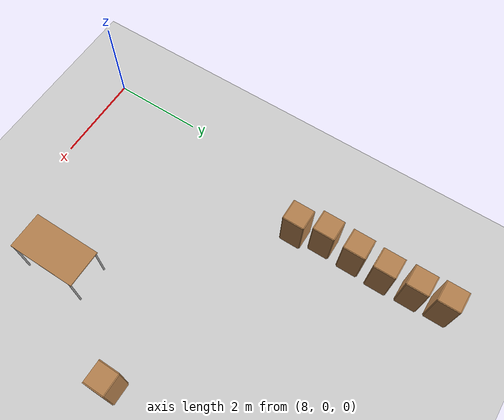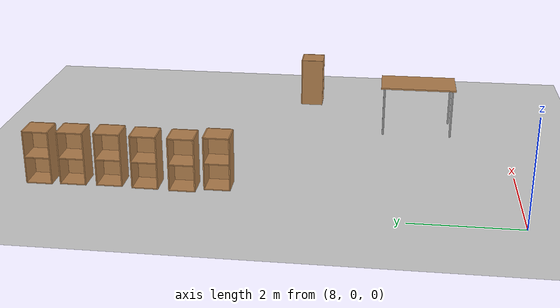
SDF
<sdf version="1.6">
 <world name="default">
  <model name="ground_plane">
   <static>1</static>
   <link name="link">
    <collision name="collision">
     <geometry><plane><normal>0 0 1</normal><size>100 100</size></plane></geometry>
     <surface>
      <contact><collide_bitmask>65535</collide_bitmask></contact>
      <friction><ode><mu>100</mu><mu2>50</mu2></ode></friction>
     </surface>
    </collision>
    <visual name="visual">
     <cast_shadows>0</cast_shadows>
     <geometry><plane><normal>0 0 1</normal><size>100 100</size></plane></geometry>
     <material>
      <script><uri>file://media/materials/scripts/gazebo.material</uri><name>Gazebo/Grey</name></script>
     </material>
    </visual>
   </link>
  </model>
  <model name="table_clone_0">
   <static>1</static>
   <link name="link">
    <collision name="surface">
     <pose>0 0 1 0 -0 0</pose>
     <geometry><box><size>1.5 0.8 0.03</size></box></geometry>
     <surface><friction><ode><mu>0.6</mu><mu2>0.6</mu2></ode></friction></surface>
    </collision>
    <visual name="visual1">
     <pose>0 0 1 0 -0 0</pose>
     <geometry><box><size>1.5 0.8 0.03</size></box></geometry>
     <material>
      <script><uri>file://media/materials/scripts/gazebo.material</uri><name>Gazebo/Wood</name></script>
     </material>
    </visual>
    <collision name="front_left_leg">
     <pose>0.68 0.38 0.5 0 -0 0</pose>
     <geometry><cylinder><radius>0.02</radius><length>1</length></cylinder></geometry>
    </collision>
    <visual name="front_left_leg">
     <pose>0.68 0.38 0.5 0 -0 0</pose>
     <geometry><cylinder><radius>0.02</radius><length>1</length></cylinder></geometry>
     <material>
      <script><uri>file://media/materials/scripts/gazebo.material</uri><name>Gazebo/Grey</name></script>
     </material>
    </visual>
    <collision name="front_right_leg">
     <pose>0.68 -0.38 0.5 0 -0 0</pose>
     <geometry><cylinder><radius>0.02</radius><length>1</length></cylinder></geometry>
    </collision>
    <visual name="front_right_leg">
     <pose>0.68 -0.38 0.5 0 -0 0</pose>
     <geometry><cylinder><radius>0.02</radius><length>1</length></cylinder></geometry>
     <material>
      <script><uri>file://media/materials/scripts/gazebo.material</uri><name>Gazebo/Grey</name></script>
     </material>
    </visual>
    <collision name="back_right_leg">
     <pose>-0.68 -0.38 0.5 0 -0 0</pose>
     <geometry><cylinder><radius>0.02</radius><length>1</length></cylinder></geometry>
    </collision>
    <visual name="back_right_leg">
     <pose>-0.68 -0.38 0.5 0 -0 0</pose>
     <geometry><cylinder><radius>0.02</radius><length>1</length></cylinder></geometry>
     <material>
      <script><uri>file://media/materials/scripts/gazebo.material</uri><name>Gazebo/Grey</name></script>
     </material>
    </visual>
    <collision name="back_left_leg">
     <pose>-0.68 0.38 0.5 0 -0 0</pose>
     <geometry><cylinder><radius>0.02</radius><length>1</length></cylinder></geometry>
    </collision>
    <visual name="back_left_leg">
     <pose>-0.68 0.38 0.5 0 -0 0</pose>
     <geometry><cylinder><radius>0.02</radius><length>1</length></cylinder></geometry>
     <material>
      <script><uri>file://media/materials/scripts/gazebo.material</uri><name>Gazebo/Grey</name></script>
     </material>
    </visual>
   </link>
   <pose>12.2611 1.7659 0 0 -0 1.5707</pose>
  </model>
  <model name="cabinet_clone_0">
   <static>1</static>
   <link name="cabinet_bottom_plate">
    <inertial>
     <pose>0 0 -1 0 -0 0</pose>
     <inertia><ixx>2.05</ixx><ixy>0</ixy><ixz>0</ixz><iyy>2.05</iyy><iyz>0</iyz><izz>2.05</izz></inertia>
     <mass>25</mass>
    </inertial>
    <collision name="cabinet_bottom_plate_geom">
     <pose>0 0 0.01 0 -0 0</pose>
     <geometry><box><size>0.45 0.45 0.02</size></box></geometry>
    </collision>
    <visual name="cabinet_bottom_plate_geom_visual">
     <pose>0 0 0.01 0 -0 0</pose>
     <geometry><box><size>0.45 0.45 0.02</size></box></geometry>
     <material>
      <script><uri>file://media/materials/scripts/gazebo.material</uri><name>Gazebo/Wood</name></script>
     </material>
    </visual>
    <collision name="cabinet_bottom_plate_geom_cabinet_back_plate">
     <pose>0.235 0 0.51 0 -0 0</pose>
     <geometry><box><size>0.02 0.45 1.02</size></box></geometry>
    </collision>
    <visual name="cabinet_bottom_plate_geom_cabinet_back_plate_visual">
     <pose>0.235 0 0.51 0 -0 0</pose>
     <geometry><box><size>0.02 0.45 1.02</size></box></geometry>
     <material>
      <script><uri>file://media/materials/scripts/gazebo.material</uri><name>Gazebo/Wood</name></script>
     </material>
    </visual>
    <collision name="cabinet_bottom_plate_geom_cabinet_left_plate">
     <pose>0 0.235 0.51 0 -0 0</pose>
     <geometry><box><size>0.45 0.02 1.02</size></box></geometry>
    </collision>
    <visual name="cabinet_bottom_plate_geom_cabinet_left_plate_visual">
     <pose>0 0.235 0.51 0 -0 0</pose>
     <geometry><box><size>0.45 0.02 1.02</size></box></geometry>
     <material>
      <script><uri>file://media/materials/scripts/gazebo.material</uri><name>Gazebo/Wood</name></script>
     </material>
    </visual>
    <collision name="cabinet_bottom_plate_geom_cabinet_middle_plate">
     <pose>0 0 0.51 0 -0 0</pose>
     <geometry><box><size>0.45 0.45 0.02</size></box></geometry>
    </collision>
    <visual name="cabinet_bottom_plate_geom_cabinet_middle_plate_visual">
     <pose>0 0 0.51 0 -0 0</pose>
     <geometry><box><size>0.45 0.45 0.02</size></box></geometry>
     <material>
      <script><uri>file://media/materials/scripts/gazebo.material</uri><name>Gazebo/Wood</name></script>
     </material>
    </visual>
    <collision name="cabinet_bottom_plate_geom_cabinet_right_plate">
     <pose>0 -0.235 0.51 0 -0 0</pose>
     <geometry><box><size>0.45 0.02 1.02</size></box></geometry>
    </collision>
    <visual name="cabinet_bottom_plate_geom_cabinet_right_plate_visual">
     <pose>0 -0.235 0.51 0 -0 0</pose>
     <geometry><box><size>0.45 0.02 1.02</size></box></geometry>
     <material>
      <script><uri>file://media/materials/scripts/gazebo.material</uri><name>Gazebo/Wood</name></script>
     </material>
    </visual>
    <collision name="cabinet_bottom_plate_geom_cabinet_top_plate">
     <pose>0 0 1.01 0 -0 0</pose>
     <geometry><box><size>0.45 0.45 0.02</size></box></geometry>
    </collision>
    <visual name="cabinet_bottom_plate_geom_cabinet_top_plate_visual">
     <pose>0 0 1.01 0 -0 0</pose>
     <geometry><box><size>0.45 0.45 0.02</size></box></geometry>
     <material>
      <script><uri>file://media/materials/scripts/gazebo.material</uri><name>Gazebo/Wood</name></script>
     </material>
    </visual>
   </link>
   <pose>8.94767 8.64428 0 0 -0 0</pose>
  </model>
  <model name="cabinet_clone_1">
   <static>1</static>
   <link name="cabinet_bottom_plate">
    <inertial>
     <pose>0 0 -1 0 -0 0</pose>
     <inertia><ixx>2.05</ixx><ixy>0</ixy><ixz>0</ixz><iyy>2.05</iyy><iyz>0</iyz><izz>2.05</izz></inertia>
     <mass>25</mass>
    </inertial>
    <collision name="cabinet_bottom_plate_geom">
     <pose>0 0 0.01 0 -0 0</pose>
     <geometry><box><size>0.45 0.45 0.02</size></box></geometry>
    </collision>
    <visual name="cabinet_bottom_plate_geom_visual">
     <pose>0 0 0.01 0 -0 0</pose>
     <geometry><box><size>0.45 0.45 0.02</size></box></geometry>
     <material>
      <script><uri>file://media/materials/scripts/gazebo.material</uri><name>Gazebo/Wood</name></script>
     </material>
    </visual>
    <collision name="cabinet_bottom_plate_geom_cabinet_back_plate">
     <pose>0.235 0 0.51 0 -0 0</pose>
     <geometry><box><size>0.02 0.45 1.02</size></box></geometry>
    </collision>
    <visual name="cabinet_bottom_plate_geom_cabinet_back_plate_visual">
     <pose>0.235 0 0.51 0 -0 0</pose>
     <geometry><box><size>0.02 0.45 1.02</size></box></geometry>
     <material>
      <script><uri>file://media/materials/scripts/gazebo.material</uri><name>Gazebo/Wood</name></script>
     </material>
    </visual>
    <collision name="cabinet_bottom_plate_geom_cabinet_left_plate">
     <pose>0 0.235 0.51 0 -0 0</pose>
     <geometry><box><size>0.45 0.02 1.02</size></box></geometry>
    </collision>
    <visual name="cabinet_bottom_plate_geom_cabinet_left_plate_visual">
     <pose>0 0.235 0.51 0 -0 0</pose>
     <geometry><box><size>0.45 0.02 1.02</size></box></geometry>
     <material>
      <script><uri>file://media/materials/scripts/gazebo.material</uri><name>Gazebo/Wood</name></script>
     </material>
    </visual>
    <collision name="cabinet_bottom_plate_geom_cabinet_middle_plate">
     <pose>0 0 0.51 0 -0 0</pose>
     <geometry><box><size>0.45 0.45 0.02</size></box></geometry>
    </collision>
    <visual name="cabinet_bottom_plate_geom_cabinet_middle_plate_visual">
     <pose>0 0 0.51 0 -0 0</pose>
     <geometry><box><size>0.45 0.45 0.02</size></box></geometry>
     <material>
      <script><uri>file://media/materials/scripts/gazebo.material</uri><name>Gazebo/Wood</name></script>
     </material>
    </visual>
    <collision name="cabinet_bottom_plate_geom_cabinet_right_plate">
     <pose>0 -0.235 0.51 0 -0 0</pose>
     <geometry><box><size>0.45 0.02 1.02</size></box></geometry>
    </collision>
    <visual name="cabinet_bottom_plate_geom_cabinet_right_plate_visual">
     <pose>0 -0.235 0.51 0 -0 0</pose>
     <geometry><box><size>0.45 0.02 1.02</size></box></geometry>
     <material>
      <script><uri>file://media/materials/scripts/gazebo.material</uri><name>Gazebo/Wood</name></script>
     </material>
    </visual>
    <collision name="cabinet_bottom_plate_geom_cabinet_top_plate">
     <pose>0 0 1.01 0 -0 0</pose>
     <geometry><box><size>0.45 0.45 0.02</size></box></geometry>
    </collision>
    <visual name="cabinet_bottom_plate_geom_cabinet_top_plate_visual">
     <pose>0 0 1.01 0 -0 0</pose>
     <geometry><box><size>0.45 0.45 0.02</size></box></geometry>
     <material>
      <script><uri>file://media/materials/scripts/gazebo.material</uri><name>Gazebo/Wood</name></script>
     </material>
    </visual>
   </link>
   <pose>8.97721 8.01762 0 0 -0 0</pose>
  </model>
  <model name="cabinet_clone_2">
   <static>1</static>
   <link name="cabinet_bottom_plate">
    <inertial>
     <pose>0 0 -1 0 -0 0</pose>
     <inertia><ixx>2.05</ixx><ixy>0</ixy><ixz>0</ixz><iyy>2.05</iyy><iyz>0</iyz><izz>2.05</izz></inertia>
     <mass>25</mass>
    </inertial>
    <collision name="cabinet_bottom_plate_geom">
     <pose>0 0 0.01 0 -0 0</pose>
     <geometry><box><size>0.45 0.45 0.02</size></box></geometry>
    </collision>
    <visual name="cabinet_bottom_plate_geom_visual">
     <pose>0 0 0.01 0 -0 0</pose>
     <geometry><box><size>0.45 0.45 0.02</size></box></geometry>
     <material>
      <script><uri>file://media/materials/scripts/gazebo.material</uri><name>Gazebo/Wood</name></script>
     </material>
    </visual>
    <collision name="cabinet_bottom_plate_geom_cabinet_back_plate">
     <pose>0.235 0 0.51 0 -0 0</pose>
     <geometry><box><size>0.02 0.45 1.02</size></box></geometry>
    </collision>
    <visual name="cabinet_bottom_plate_geom_cabinet_back_plate_visual">
     <pose>0.235 0 0.51 0 -0 0</pose>
     <geometry><box><size>0.02 0.45 1.02</size></box></geometry>
     <material>
      <script><uri>file://media/materials/scripts/gazebo.material</uri><name>Gazebo/Wood</name></script>
     </material>
    </visual>
    <collision name="cabinet_bottom_plate_geom_cabinet_left_plate">
     <pose>0 0.235 0.51 0 -0 0</pose>
     <geometry><box><size>0.45 0.02 1.02</size></box></geometry>
    </collision>
    <visual name="cabinet_bottom_plate_geom_cabinet_left_plate_visual">
     <pose>0 0.235 0.51 0 -0 0</pose>
     <geometry><box><size>0.45 0.02 1.02</size></box></geometry>
     <material>
      <script><uri>file://media/materials/scripts/gazebo.material</uri><name>Gazebo/Wood</name></script>
     </material>
    </visual>
    <collision name="cabinet_bottom_plate_geom_cabinet_middle_plate">
     <pose>0 0 0.51 0 -0 0</pose>
     <geometry><box><size>0.45 0.45 0.02</size></box></geometry>
    </collision>
    <visual name="cabinet_bottom_plate_geom_cabinet_middle_plate_visual">
     <pose>0 0 0.51 0 -0 0</pose>
     <geometry><box><size>0.45 0.45 0.02</size></box></geometry>
     <material>
      <script><uri>file://media/materials/scripts/gazebo.material</uri><name>Gazebo/Wood</name></script>
     </material>
    </visual>
    <collision name="cabinet_bottom_plate_geom_cabinet_right_plate">
     <pose>0 -0.235 0.51 0 -0 0</pose>
     <geometry><box><size>0.45 0.02 1.02</size></box></geometry>
    </collision>
    <visual name="cabinet_bottom_plate_geom_cabinet_right_plate_visual">
     <pose>0 -0.235 0.51 0 -0 0</pose>
     <geometry><box><size>0.45 0.02 1.02</size></box></geometry>
     <material>
      <script><uri>file://media/materials/scripts/gazebo.material</uri><name>Gazebo/Wood</name></script>
     </material>
    </visual>
    <collision name="cabinet_bottom_plate_geom_cabinet_top_plate">
     <pose>0 0 1.01 0 -0 0</pose>
     <geometry><box><size>0.45 0.45 0.02</size></box></geometry>
    </collision>
    <visual name="cabinet_bottom_plate_geom_cabinet_top_plate_visual">
     <pose>0 0 1.01 0 -0 0</pose>
     <geometry><box><size>0.45 0.45 0.02</size></box></geometry>
     <material>
      <script><uri>file://media/materials/scripts/gazebo.material</uri><name>Gazebo/Wood</name></script>
     </material>
    </visual>
   </link>
   <pose>8.9996 7.34368 0 0 -0 0</pose>
  </model>
  <model name="cabinet_clone_3">
   <static>1</static>
   <link name="cabinet_bottom_plate">
    <inertial>
     <pose>0 0 -1 0 -0 0</pose>
     <inertia><ixx>2.05</ixx><ixy>0</ixy><ixz>0</ixz><iyy>2.05</iyy><iyz>0</iyz><izz>2.05</izz></inertia>
     <mass>25</mass>
    </inertial>
    <collision name="cabinet_bottom_plate_geom">
     <pose>0 0 0.01 0 -0 0</pose>
     <geometry><box><size>0.45 0.45 0.02</size></box></geometry>
    </collision>
    <visual name="cabinet_bottom_plate_geom_visual">
     <pose>0 0 0.01 0 -0 0</pose>
     <geometry><box><size>0.45 0.45 0.02</size></box></geometry>
     <material>
      <script><uri>file://media/materials/scripts/gazebo.material</uri><name>Gazebo/Wood</name></script>
     </material>
    </visual>
    <collision name="cabinet_bottom_plate_geom_cabinet_back_plate">
     <pose>0.235 0 0.51 0 -0 0</pose>
     <geometry><box><size>0.02 0.45 1.02</size></box></geometry>
    </collision>
    <visual name="cabinet_bottom_plate_geom_cabinet_back_plate_visual">
     <pose>0.235 0 0.51 0 -0 0</pose>
     <geometry><box><size>0.02 0.45 1.02</size></box></geometry>
     <material>
      <script><uri>file://media/materials/scripts/gazebo.material</uri><name>Gazebo/Wood</name></script>
     </material>
    </visual>
    <collision name="cabinet_bottom_plate_geom_cabinet_left_plate">
     <pose>0 0.235 0.51 0 -0 0</pose>
     <geometry><box><size>0.45 0.02 1.02</size></box></geometry>
    </collision>
    <visual name="cabinet_bottom_plate_geom_cabinet_left_plate_visual">
     <pose>0 0.235 0.51 0 -0 0</pose>
     <geometry><box><size>0.45 0.02 1.02</size></box></geometry>
     <material>
      <script><uri>file://media/materials/scripts/gazebo.material</uri><name>Gazebo/Wood</name></script>
     </material>
    </visual>
    <collision name="cabinet_bottom_plate_geom_cabinet_middle_plate">
     <pose>0 0 0.51 0 -0 0</pose>
     <geometry><box><size>0.45 0.45 0.02</size></box></geometry>
    </collision>
    <visual name="cabinet_bottom_plate_geom_cabinet_middle_plate_visual">
     <pose>0 0 0.51 0 -0 0</pose>
     <geometry><box><size>0.45 0.45 0.02</size></box></geometry>
     <material>
      <script><uri>file://media/materials/scripts/gazebo.material</uri><name>Gazebo/Wood</name></script>
     </material>
    </visual>
    <collision name="cabinet_bottom_plate_geom_cabinet_right_plate">
     <pose>0 -0.235 0.51 0 -0 0</pose>
     <geometry><box><size>0.45 0.02 1.02</size></box></geometry>
    </collision>
    <visual name="cabinet_bottom_plate_geom_cabinet_right_plate_visual">
     <pose>0 -0.235 0.51 0 -0 0</pose>
     <geometry><box><size>0.45 0.02 1.02</size></box></geometry>
     <material>
      <script><uri>file://media/materials/scripts/gazebo.material</uri><name>Gazebo/Wood</name></script>
     </material>
    </visual>
    <collision name="cabinet_bottom_plate_geom_cabinet_top_plate">
     <pose>0 0 1.01 0 -0 0</pose>
     <geometry><box><size>0.45 0.45 0.02</size></box></geometry>
    </collision>
    <visual name="cabinet_bottom_plate_geom_cabinet_top_plate_visual">
     <pose>0 0 1.01 0 -0 0</pose>
     <geometry><box><size>0.45 0.45 0.02</size></box></geometry>
     <material>
      <script><uri>file://media/materials/scripts/gazebo.material</uri><name>Gazebo/Wood</name></script>
     </material>
    </visual>
   </link>
   <pose>8.96656 6.67435 0 0 -0 0</pose>
  </model>
  <model name="cabinet_clone_4">
   <static>1</static>
   <link name="cabinet_bottom_plate">
    <inertial>
     <pose>0 0 -1 0 -0 0</pose>
     <inertia><ixx>2.05</ixx><ixy>0</ixy><ixz>0</ixz><iyy>2.05</iyy><iyz>0</iyz><izz>2.05</izz></inertia>
     <mass>25</mass>
    </inertial>
    <collision name="cabinet_bottom_plate_geom">
     <pose>0 0 0.01 0 -0 0</pose>
     <geometry><box><size>0.45 0.45 0.02</size></box></geometry>
    </collision>
    <visual name="cabinet_bottom_plate_geom_visual">
     <pose>0 0 0.01 0 -0 0</pose>
     <geometry><box><size>0.45 0.45 0.02</size></box></geometry>
     <material>
      <script><uri>file://media/materials/scripts/gazebo.material</uri><name>Gazebo/Wood</name></script>
     </material>
    </visual>
    <collision name="cabinet_bottom_plate_geom_cabinet_back_plate">
     <pose>0.235 0 0.51 0 -0 0</pose>
     <geometry><box><size>0.02 0.45 1.02</size></box></geometry>
    </collision>
    <visual name="cabinet_bottom_plate_geom_cabinet_back_plate_visual">
     <pose>0.235 0 0.51 0 -0 0</pose>
     <geometry><box><size>0.02 0.45 1.02</size></box></geometry>
     <material>
      <script><uri>file://media/materials/scripts/gazebo.material</uri><name>Gazebo/Wood</name></script>
     </material>
    </visual>
    <collision name="cabinet_bottom_plate_geom_cabinet_left_plate">
     <pose>0 0.235 0.51 0 -0 0</pose>
     <geometry><box><size>0.45 0.02 1.02</size></box></geometry>
    </collision>
    <visual name="cabinet_bottom_plate_geom_cabinet_left_plate_visual">
     <pose>0 0.235 0.51 0 -0 0</pose>
     <geometry><box><size>0.45 0.02 1.02</size></box></geometry>
     <material>
      <script><uri>file://media/materials/scripts/gazebo.material</uri><name>Gazebo/Wood</name></script>
     </material>
    </visual>
    <collision name="cabinet_bottom_plate_geom_cabinet_middle_plate">
     <pose>0 0 0.51 0 -0 0</pose>
     <geometry><box><size>0.45 0.45 0.02</size></box></geometry>
    </collision>
    <visual name="cabinet_bottom_plate_geom_cabinet_middle_plate_visual">
     <pose>0 0 0.51 0 -0 0</pose>
     <geometry><box><size>0.45 0.45 0.02</size></box></geometry>
     <material>
      <script><uri>file://media/materials/scripts/gazebo.material</uri><name>Gazebo/Wood</name></script>
     </material>
    </visual>
    <collision name="cabinet_bottom_plate_geom_cabinet_right_plate">
     <pose>0 -0.235 0.51 0 -0 0</pose>
     <geometry><box><size>0.45 0.02 1.02</size></box></geometry>
    </collision>
    <visual name="cabinet_bottom_plate_geom_cabinet_right_plate_visual">
     <pose>0 -0.235 0.51 0 -0 0</pose>
     <geometry><box><size>0.45 0.02 1.02</size></box></geometry>
     <material>
      <script><uri>file://media/materials/scripts/gazebo.material</uri><name>Gazebo/Wood</name></script>
     </material>
    </visual>
    <collision name="cabinet_bottom_plate_geom_cabinet_top_plate">
     <pose>0 0 1.01 0 -0 0</pose>
     <geometry><box><size>0.45 0.45 0.02</size></box></geometry>
    </collision>
    <visual name="cabinet_bottom_plate_geom_cabinet_top_plate_visual">
     <pose>0 0 1.01 0 -0 0</pose>
     <geometry><box><size>0.45 0.45 0.02</size></box></geometry>
     <material>
      <script><uri>file://media/materials/scripts/gazebo.material</uri><name>Gazebo/Wood</name></script>
     </material>
    </visual>
   </link>
   <pose>8.9409 5.98564 0 0 -0 0</pose>
  </model>
  <model name="cabinet_clone_5">
   <static>1</static>
   <link name="cabinet_bottom_plate">
    <inertial>
     <pose>0 0 -1 0 -0 0</pose>
     <inertia><ixx>2.05</ixx><ixy>0</ixy><ixz>0</ixz><iyy>2.05</iyy><iyz>0</iyz><izz>2.05</izz></inertia>
     <mass>25</mass>
    </inertial>
    <collision name="cabinet_bottom_plate_geom">
     <pose>0 0 0.01 0 -0 0</pose>
     <geometry><box><size>0.45 0.45 0.02</size></box></geometry>
    </collision>
    <visual name="cabinet_bottom_plate_geom_visual">
     <pose>0 0 0.01 0 -0 0</pose>
     <geometry><box><size>0.45 0.45 0.02</size></box></geometry>
     <material>
      <script><uri>file://media/materials/scripts/gazebo.material</uri><name>Gazebo/Wood</name></script>
     </material>
    </visual>
    <collision name="cabinet_bottom_plate_geom_cabinet_back_plate">
     <pose>0.235 0 0.51 0 -0 0</pose>
     <geometry><box><size>0.02 0.45 1.02</size></box></geometry>
    </collision>
    <visual name="cabinet_bottom_plate_geom_cabinet_back_plate_visual">
     <pose>0.235 0 0.51 0 -0 0</pose>
     <geometry><box><size>0.02 0.45 1.02</size></box></geometry>
     <material>
      <script><uri>file://media/materials/scripts/gazebo.material</uri><name>Gazebo/Wood</name></script>
     </material>
    </visual>
    <collision name="cabinet_bottom_plate_geom_cabinet_left_plate">
     <pose>0 0.235 0.51 0 -0 0</pose>
     <geometry><box><size>0.45 0.02 1.02</size></box></geometry>
    </collision>
    <visual name="cabinet_bottom_plate_geom_cabinet_left_plate_visual">
     <pose>0 0.235 0.51 0 -0 0</pose>
     <geometry><box><size>0.45 0.02 1.02</size></box></geometry>
     <material>
      <script><uri>file://media/materials/scripts/gazebo.material</uri><name>Gazebo/Wood</name></script>
     </material>
    </visual>
    <collision name="cabinet_bottom_plate_geom_cabinet_middle_plate">
     <pose>0 0 0.51 0 -0 0</pose>
     <geometry><box><size>0.45 0.45 0.02</size></box></geometry>
    </collision>
    <visual name="cabinet_bottom_plate_geom_cabinet_middle_plate_visual">
     <pose>0 0 0.51 0 -0 0</pose>
     <geometry><box><size>0.45 0.45 0.02</size></box></geometry>
     <material>
      <script><uri>file://media/materials/scripts/gazebo.material</uri><name>Gazebo/Wood</name></script>
     </material>
    </visual>
    <collision name="cabinet_bottom_plate_geom_cabinet_right_plate">
     <pose>0 -0.235 0.51 0 -0 0</pose>
     <geometry><box><size>0.45 0.02 1.02</size></box></geometry>
    </collision>
    <visual name="cabinet_bottom_plate_geom_cabinet_right_plate_visual">
     <pose>0 -0.235 0.51 0 -0 0</pose>
     <geometry><box><size>0.45 0.02 1.02</size></box></geometry>
     <material>
      <script><uri>file://media/materials/scripts/gazebo.material</uri><name>Gazebo/Wood</name></script>
     </material>
    </visual>
    <collision name="cabinet_bottom_plate_geom_cabinet_top_plate">
     <pose>0 0 1.01 0 -0 0</pose>
     <geometry><box><size>0.45 0.45 0.02</size></box></geometry>
    </collision>
    <visual name="cabinet_bottom_plate_geom_cabinet_top_plate_visual">
     <pose>0 0 1.01 0 -0 0</pose>
     <geometry><box><size>0.45 0.45 0.02</size></box></geometry>
     <material>
      <script><uri>file://media/materials/scripts/gazebo.material</uri><name>Gazebo/Wood</name></script>
     </material>
    </visual>
   </link>
   <pose>9.06137 5.36753 0 0 -0 0</pose>
  </model>
  <model name="cabinet_clone_6">
   <static>1</static>
   <link name="cabinet_bottom_plate">
    <inertial>
     <pose>0 0 -1 0 -0 0</pose>
     <inertia><ixx>2.05</ixx><ixy>0</ixy><ixz>0</ixz><iyy>2.05</iyy><iyz>0</iyz><izz>2.05</izz></inertia>
     <mass>25</mass>
    </inertial>
    <collision name="cabinet_bottom_plate_geom">
     <pose>0 0 0.01 0 -0 0</pose>
     <geometry><box><size>0.45 0.45 0.02</size></box></geometry>
    </collision>
    <visual name="cabinet_bottom_plate_geom_visual">
     <pose>0 0 0.01 0 -0 0</pose>
     <geometry><box><size>0.45 0.45 0.02</size></box></geometry>
     <material>
      <script><uri>file://media/materials/scripts/gazebo.material</uri><name>Gazebo/Wood</name></script>
     </material>
    </visual>
    <collision name="cabinet_bottom_plate_geom_cabinet_back_plate">
     <pose>0.235 0 0.51 0 -0 0</pose>
     <geometry><box><size>0.02 0.45 1.02</size></box></geometry>
    </collision>
    <visual name="cabinet_bottom_plate_geom_cabinet_back_plate_visual">
     <pose>0.235 0 0.51 0 -0 0</pose>
     <geometry><box><size>0.02 0.45 1.02</size></box></geometry>
     <material>
      <script><uri>file://media/materials/scripts/gazebo.material</uri><name>Gazebo/Wood</name></script>
     </material>
    </visual>
    <collision name="cabinet_bottom_plate_geom_cabinet_left_plate">
     <pose>0 0.235 0.51 0 -0 0</pose>
     <geometry><box><size>0.45 0.02 1.02</size></box></geometry>
    </collision>
    <visual name="cabinet_bottom_plate_geom_cabinet_left_plate_visual">
     <pose>0 0.235 0.51 0 -0 0</pose>
     <geometry><box><size>0.45 0.02 1.02</size></box></geometry>
     <material>
      <script><uri>file://media/materials/scripts/gazebo.material</uri><name>Gazebo/Wood</name></script>
     </material>
    </visual>
    <collision name="cabinet_bottom_plate_geom_cabinet_middle_plate">
     <pose>0 0 0.51 0 -0 0</pose>
     <geometry><box><size>0.45 0.45 0.02</size></box></geometry>
    </collision>
    <visual name="cabinet_bottom_plate_geom_cabinet_middle_plate_visual">
     <pose>0 0 0.51 0 -0 0</pose>
     <geometry><box><size>0.45 0.45 0.02</size></box></geometry>
     <material>
      <script><uri>file://media/materials/scripts/gazebo.material</uri><name>Gazebo/Wood</name></script>
     </material>
    </visual>
    <collision name="cabinet_bottom_plate_geom_cabinet_right_plate">
     <pose>0 -0.235 0.51 0 -0 0</pose>
     <geometry><box><size>0.45 0.02 1.02</size></box></geometry>
    </collision>
    <visual name="cabinet_bottom_plate_geom_cabinet_right_plate_visual">
     <pose>0 -0.235 0.51 0 -0 0</pose>
     <geometry><box><size>0.45 0.02 1.02</size></box></geometry>
     <material>
      <script><uri>file://media/materials/scripts/gazebo.material</uri><name>Gazebo/Wood</name></script>
     </material>
    </visual>
    <collision name="cabinet_bottom_plate_geom_cabinet_top_plate">
     <pose>0 0 1.01 0 -0 0</pose>
     <geometry><box><size>0.45 0.45 0.02</size></box></geometry>
    </collision>
    <visual name="cabinet_bottom_plate_geom_cabinet_top_plate_visual">
     <pose>0 0 1.01 0 -0 0</pose>
     <geometry><box><size>0.45 0.45 0.02</size></box></geometry>
     <material>
      <script><uri>file://media/materials/scripts/gazebo.material</uri><name>Gazebo/Wood</name></script>
     </material>
    </visual>
   </link>
   <pose>13.6788 4.04121 0 0 -0 1.5707</pose>
  </model>
 </world>
</sdf>
